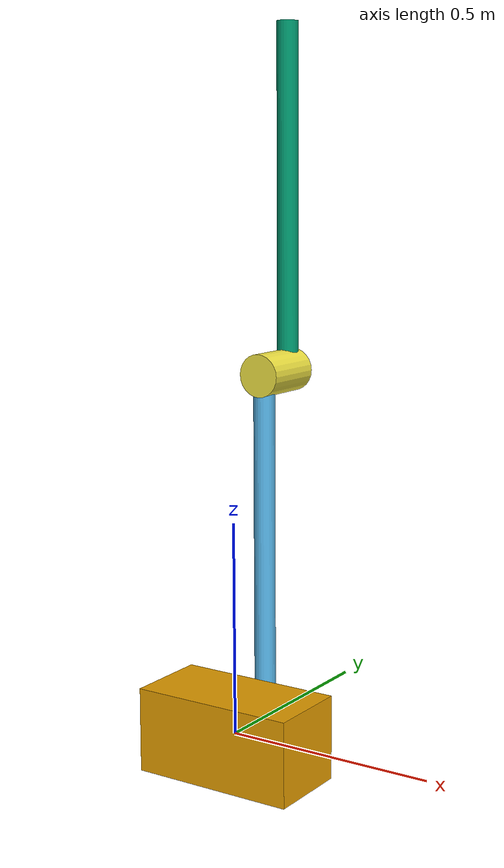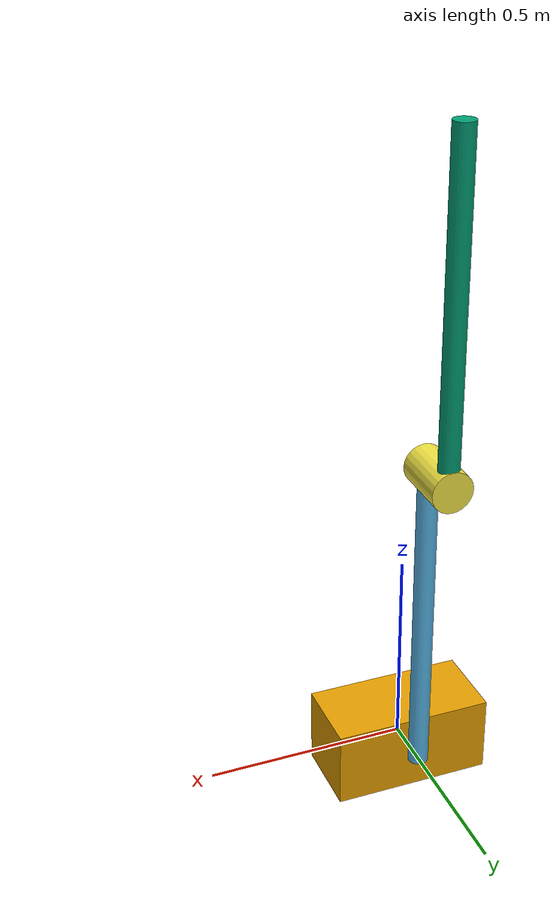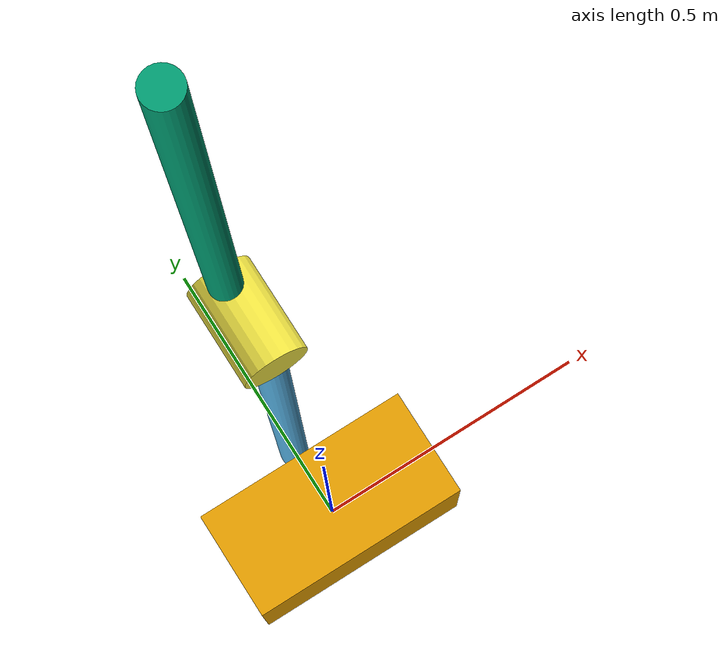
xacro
<robot name="double-pendulum" xmlns:xacro="http://www.ros.org/wiki/xacro">
  <xacro:property name="depth" value="0.2"/>
  <xacro:property name="pole_radius" value="${depth / 8}"/>
  <xacro:property name="pole_length" value="0.8"/>
  <xacro:property name="pole_mass" value="0.5"/>
  <xacro:property name="cart_width" value="0.4"/>
  <xacro:property name="cart_height" value="${cart_width / 2}"/>
  <xacro:property name="cart_mass" value="8.0"/>
  <xacro:property name="elbow_radius" value="${depth / 4}"/>
  <xacro:property name="elbow_depth" value="${pole_radius * 6}"/>
  <xacro:property name="elbow_mass" value="0.1"/>

  <xacro:macro name="pole" params="name length radius mass">
    <link name="${name}">
      <visual>
        <geometry>
          <cylinder length="${length}" radius="${radius}"/>
        </geometry>
      </visual>
      <inertial>
	<mass value="${mass}"/>
	<inertia ixx="${mass * length * length / 3}" ixy="0.0" ixz="0.0"
		 iyy="0.0" iyz="0.0" izz="${mass * length * length / 3}"/>
      </inertial>
    </link>
  </xacro:macro>

  <xacro:macro name="null_inertia" params="">
    <inertia ixx="1" ixy="0" ixz="0" iyy="1" iyz="0" izz="1"/>
  </xacro:macro>

  <link name="cart">
    <visual>
      <geometry>
        <box size="${cart_width} ${depth} ${cart_height}"/>
      </geometry>
    </visual>
    <inertial>
      <mass value="${cart_mass}"/>
      <xacro:null_inertia/>
    </inertial>
  </link>

  <xacro:pole name="pole1" length="${pole_length}" radius="${pole_radius}" mass="${pole_mass}"/>
  <xacro:pole name="pole2" length="${pole_length}" radius="${pole_radius}" mass="${pole_mass}"/>

  <link name="elbow">
    <visual>
      <geometry>
        <cylinder length="${elbow_depth}" radius="${elbow_radius}"/>
      </geometry>
    </visual>
    <inertial>
      <mass value="${elbow_mass}"/>
      <xacro:null_inertia/>
    </inertial>
  </link>

  <joint name="cart_to_pole" type="continuous">
    <axis xyz="0 1 0"/>
    <parent link="cart"/>
    <child link="pole1"/>
    <origin xyz="0 ${(depth + 2*pole_radius) / 2} ${pole_length / 2}"/>
  </joint>

  <joint name="pole_to_elbow" type="fixed">
    <origin rpy="${pi / 2} 0 0" xyz="0 ${elbow_depth / 3} ${(pole_length + elbow_radius) / 2}"/>
    <parent link="pole1"/>
    <child link="elbow"/>
  </joint>

  <joint name="elbow_to_pole" type="continuous">
    <axis xyz="0 1 0"/>
    <origin rpy="${pi/2} 0 0" xyz="0 ${pole_length / 2} ${-(elbow_depth/3)}"/>
    <parent link="elbow"/>
    <child link="pole2"/>
  </joint>
</robot>
